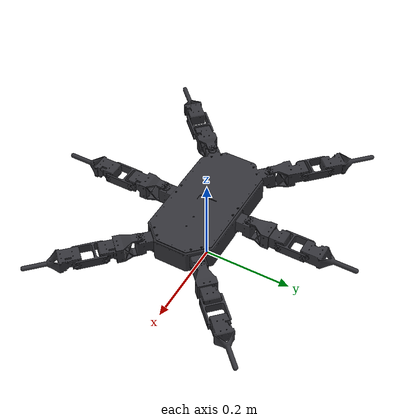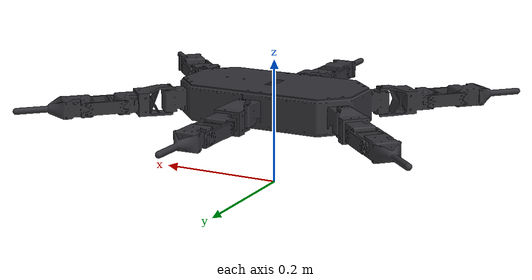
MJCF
<mujoco model="sixtrail1">
  <compiler angle="radian" meshdir="meshes" autolimits="true"/>

  <default>
    <default class="sixtrail1">
      <!-- joint conventions: coxa about +z (yaw), femur/tibia about +y (positive = leg down) -->
      <default class="coxa_joint"><joint axis="0 0 1" range="-1.5708 1.5708"/></default>
      <default class="femur_joint"><joint axis="0 1 0" range="-2.0944 2.0944"/></default>  <!-- widened from ±90°: hardware home stance has femur ~105° down (2026-09-02) -->
      <default class="tibia_joint"><joint axis="0 1 0" range="-2.0944 2.0944"/></default>
      <default class="visual">
        <geom type="mesh" contype="0" conaffinity="0" group="2" material="dark"/>
      </default>
      <default class="collision">
        <geom group="3" type="box" contype="1" conaffinity="1"/>
        <!-- per-link primitives (identical for the six legs, expressed in each link frame) -->
        <default class="coxa_mount"><geom type="box" size="0.0176 0.0143 0.024" pos="-0.0064 0 0.001"/></default>
        <default class="coxa0"><geom type="box" size="0.0275 0.0223 0.0184" pos="0.0595 -0.0012 0"/></default>
        <default class="coxa1"><geom type="box" size="0.0175 0.012 0.023" pos="0.0145 0 0.001"/></default>
        <default class="femur0"><geom type="box" size="0.033 0.023 0.0101" pos="0.03 0 0"/></default>
        <default class="tibia0"><geom type="box" size="0.0255 0.0217 0.0143" pos="0.0145 -0.0017 0"/></default>
        <default class="tibia1"><geom type="capsule" size="0.007" fromto="0.04 0 0 0.088 0 0"/></default>
        <default class="foot"><geom type="sphere" size="0.005" pos="0.10525 0 0"/></default>
      </default>
    </default>
  </default>

  <asset>
    <material name="dark" rgba="0.2 0.2 0.22 1"/>
    <mesh class="sixtrail1" file="body.stl"/>
    <mesh class="sixtrail1" file="coxa.stl"/>
    <mesh class="sixtrail1" file="femur.stl"/>
    <mesh class="sixtrail1" file="tibia.stl"/>
  </asset>

  <worldbody>
    <body name="base" pos="0 0 0.154" childclass="sixtrail1">
      <light pos="0 0 1.5" mode="trackcom"/>
      <camera name="tracking" pos="0.7 -1.0 0.45" xyaxes="0.82 0.57 0 -0.25 0.36 0.9" mode="trackcom"/>
      <camera name="side" pos="0 -0.9 0.25" xyaxes="1 0 0 0 0.3 1" mode="trackcom"/>
      <freejoint name="floating_base_joint"/>
      <inertial pos="-1.752e-06 0 -0.01881" mass="3.496" fullinertia="0.01452 0.03806 0.04988 0 5.954e-07 0"/>
      <site name="imu" pos="0 0 0" quat="0.7071068 0 0 0.7071068" group="5"/>  <!-- WitMotion mounted yawed +90 deg: IMU x = body left (measured 2026-09-02) -->
      <!-- Forward/down D435i optical frame proxy: 13 cm forward, pitched 35 deg down. -->
      <site name="depth_camera" pos="0.13 0 0.02" quat="-0.6272114 -0.3265056 0.3265056 0.6272114" group="5"/>
      <geom class="visual" mesh="body"/>
      <geom name="base_collision0" class="collision" size="0.15 0.0755 0.029" pos="0 0 -0.019"/>
      <geom name="base_collision1" class="coxa_mount" pos="0.1455 0.06547 -0.019" quat="0.92388 0 0 0.382683"/>  <!-- LF coxa servo mount -->
      <geom name="base_collision2" class="coxa_mount" pos="0 0.0936 -0.019" quat="0.707107 0 0 0.707107"/>  <!-- LM coxa servo mount -->
      <geom name="base_collision3" class="coxa_mount" pos="-0.1455 0.06547 -0.019" quat="0.382683 0 0 0.92388"/>  <!-- LH coxa servo mount -->
      <geom name="base_collision4" class="coxa_mount" pos="0.1455 -0.06547 -0.019" quat="0.92388 0 0 -0.382683"/>  <!-- RF coxa servo mount -->
      <geom name="base_collision5" class="coxa_mount" pos="0 -0.0936 -0.019" quat="0.707107 0 0 -0.707107"/>  <!-- RM coxa servo mount -->
      <geom name="base_collision6" class="coxa_mount" pos="-0.1455 -0.06547 -0.019" quat="0.382683 0 0 -0.92388"/>  <!-- RH coxa servo mount -->
      <body name="LF_coxa" pos="0.15 0.07 -0.02" quat="0.92388 0 0 0.382683">
        <inertial pos="0.05422 -0.000401 7.604e-05" mass="0.68" fullinertia="0.0001565 0.0003309 0.000329 2.054e-06 2.024e-06 0"/>
        <joint name="LF_coxa_joint" class="coxa_joint"/>
        <geom class="visual" mesh="coxa"/>
        <geom name="LF_coxa_collision0" class="coxa0"/>
        <geom name="LF_coxa_collision1" class="coxa1"/>
        <body name="LF_femur" pos="0.076 0 0">
          <inertial pos="0.02733 0 0" mass="0.25" fullinertia="9.933e-05 6.842e-05 0.0001502 0 0 0"/>
          <joint name="LF_femur_joint" class="femur_joint"/>
          <geom class="visual" mesh="femur"/>
          <geom name="LF_femur_collision0" class="femur0"/>
          <body name="LF_tibia" pos="0.06 0 0">
            <inertial pos="0.02077 -0.0004534 2.466e-06" mass="0.47" fullinertia="7.15e-05 0.000301 0.0003205 -1.968e-06 0 0"/>
            <joint name="LF_tibia_joint" class="tibia_joint"/>
            <geom class="visual" mesh="tibia"/>
            <geom name="LF_tibia_collision0" class="tibia0"/>
            <geom name="LF_tibia_collision1" class="tibia1"/>
            <geom name="LF_foot_collision" class="foot"/>
            <site name="LF" pos="0.10525 0 0" type="sphere" size="0.005" group="5"/>
          </body>
        </body>
      </body>
      <body name="LM_coxa" pos="0 0.1 -0.02" quat="0.707107 0 0 0.707107">
        <inertial pos="0.05422 -0.000401 7.604e-05" mass="0.68" fullinertia="0.0001565 0.0003309 0.000329 2.054e-06 2.024e-06 0"/>
        <joint name="LM_coxa_joint" class="coxa_joint"/>
        <geom class="visual" mesh="coxa"/>
        <geom name="LM_coxa_collision0" class="coxa0"/>
        <geom name="LM_coxa_collision1" class="coxa1"/>
        <body name="LM_femur" pos="0.076 0 0">
          <inertial pos="0.02733 0 0" mass="0.25" fullinertia="9.933e-05 6.842e-05 0.0001502 0 0 0"/>
          <joint name="LM_femur_joint" class="femur_joint"/>
          <geom class="visual" mesh="femur"/>
          <geom name="LM_femur_collision0" class="femur0"/>
          <body name="LM_tibia" pos="0.06 0 0">
            <inertial pos="0.02077 -0.0004534 2.466e-06" mass="0.47" fullinertia="7.15e-05 0.000301 0.0003205 -1.968e-06 0 0"/>
            <joint name="LM_tibia_joint" class="tibia_joint"/>
            <geom class="visual" mesh="tibia"/>
            <geom name="LM_tibia_collision0" class="tibia0"/>
            <geom name="LM_tibia_collision1" class="tibia1"/>
            <geom name="LM_foot_collision" class="foot"/>
            <site name="LM" pos="0.10525 0 0" type="sphere" size="0.005" group="5"/>
          </body>
        </body>
      </body>
      <body name="LH_coxa" pos="-0.15 0.07 -0.02" quat="0.382683 0 0 0.92388">
        <inertial pos="0.05422 -0.000401 7.604e-05" mass="0.68" fullinertia="0.0001565 0.0003309 0.000329 2.054e-06 2.024e-06 0"/>
        <joint name="LH_coxa_joint" class="coxa_joint"/>
        <geom class="visual" mesh="coxa"/>
        <geom name="LH_coxa_collision0" class="coxa0"/>
        <geom name="LH_coxa_collision1" class="coxa1"/>
        <body name="LH_femur" pos="0.076 0 0">
          <inertial pos="0.02733 0 0" mass="0.25" fullinertia="9.933e-05 6.842e-05 0.0001502 0 0 0"/>
          <joint name="LH_femur_joint" class="femur_joint"/>
          <geom class="visual" mesh="femur"/>
          <geom name="LH_femur_collision0" class="femur0"/>
          <body name="LH_tibia" pos="0.06 0 0">
            <inertial pos="0.02077 -0.0004534 2.466e-06" mass="0.47" fullinertia="7.15e-05 0.000301 0.0003205 -1.968e-06 0 0"/>
            <joint name="LH_tibia_joint" class="tibia_joint"/>
            <geom class="visual" mesh="tibia"/>
            <geom name="LH_tibia_collision0" class="tibia0"/>
            <geom name="LH_tibia_collision1" class="tibia1"/>
            <geom name="LH_foot_collision" class="foot"/>
            <site name="LH" pos="0.10525 0 0" type="sphere" size="0.005" group="5"/>
          </body>
        </body>
      </body>
      <body name="RF_coxa" pos="0.15 -0.07 -0.02" quat="0.92388 0 0 -0.382683">
        <inertial pos="0.05422 -0.000401 7.604e-05" mass="0.68" fullinertia="0.0001565 0.0003309 0.000329 2.054e-06 2.024e-06 0"/>
        <joint name="RF_coxa_joint" class="coxa_joint"/>
        <geom class="visual" mesh="coxa"/>
        <geom name="RF_coxa_collision0" class="coxa0"/>
        <geom name="RF_coxa_collision1" class="coxa1"/>
        <body name="RF_femur" pos="0.076 0 0">
          <inertial pos="0.02733 0 0" mass="0.25" fullinertia="9.933e-05 6.842e-05 0.0001502 0 0 0"/>
          <joint name="RF_femur_joint" class="femur_joint"/>
          <geom class="visual" mesh="femur"/>
          <geom name="RF_femur_collision0" class="femur0"/>
          <body name="RF_tibia" pos="0.06 0 0">
            <inertial pos="0.02077 -0.0004534 2.466e-06" mass="0.47" fullinertia="7.15e-05 0.000301 0.0003205 -1.968e-06 0 0"/>
            <joint name="RF_tibia_joint" class="tibia_joint"/>
            <geom class="visual" mesh="tibia"/>
            <geom name="RF_tibia_collision0" class="tibia0"/>
            <geom name="RF_tibia_collision1" class="tibia1"/>
            <geom name="RF_foot_collision" class="foot"/>
            <site name="RF" pos="0.10525 0 0" type="sphere" size="0.005" group="5"/>
          </body>
        </body>
      </body>
      <body name="RM_coxa" pos="0 -0.1 -0.02" quat="0.707107 0 0 -0.707107">
        <inertial pos="0.05422 -0.000401 7.604e-05" mass="0.68" fullinertia="0.0001565 0.0003309 0.000329 2.054e-06 2.024e-06 0"/>
        <joint name="RM_coxa_joint" class="coxa_joint"/>
        <geom class="visual" mesh="coxa"/>
        <geom name="RM_coxa_collision0" class="coxa0"/>
        <geom name="RM_coxa_collision1" class="coxa1"/>
        <body name="RM_femur" pos="0.076 0 0">
          <inertial pos="0.02733 0 0" mass="0.25" fullinertia="9.933e-05 6.842e-05 0.0001502 0 0 0"/>
          <joint name="RM_femur_joint" class="femur_joint"/>
          <geom class="visual" mesh="femur"/>
          <geom name="RM_femur_collision0" class="femur0"/>
          <body name="RM_tibia" pos="0.06 0 0">
            <inertial pos="0.02077 -0.0004534 2.466e-06" mass="0.47" fullinertia="7.15e-05 0.000301 0.0003205 -1.968e-06 0 0"/>
            <joint name="RM_tibia_joint" class="tibia_joint"/>
            <geom class="visual" mesh="tibia"/>
            <geom name="RM_tibia_collision0" class="tibia0"/>
            <geom name="RM_tibia_collision1" class="tibia1"/>
            <geom name="RM_foot_collision" class="foot"/>
            <site name="RM" pos="0.10525 0 0" type="sphere" size="0.005" group="5"/>
          </body>
        </body>
      </body>
      <body name="RH_coxa" pos="-0.15 -0.07 -0.02" quat="0.382683 0 0 -0.92388">
        <inertial pos="0.05422 -0.000401 7.604e-05" mass="0.68" fullinertia="0.0001565 0.0003309 0.000329 2.054e-06 2.024e-06 0"/>
        <joint name="RH_coxa_joint" class="coxa_joint"/>
        <geom class="visual" mesh="coxa"/>
        <geom name="RH_coxa_collision0" class="coxa0"/>
        <geom name="RH_coxa_collision1" class="coxa1"/>
        <body name="RH_femur" pos="0.076 0 0">
          <inertial pos="0.02733 0 0" mass="0.25" fullinertia="9.933e-05 6.842e-05 0.0001502 0 0 0"/>
          <joint name="RH_femur_joint" class="femur_joint"/>
          <geom class="visual" mesh="femur"/>
          <geom name="RH_femur_collision0" class="femur0"/>
          <body name="RH_tibia" pos="0.06 0 0">
            <inertial pos="0.02077 -0.0004534 2.466e-06" mass="0.47" fullinertia="7.15e-05 0.000301 0.0003205 -1.968e-06 0 0"/>
            <joint name="RH_tibia_joint" class="tibia_joint"/>
            <geom class="visual" mesh="tibia"/>
            <geom name="RH_tibia_collision0" class="tibia0"/>
            <geom name="RH_tibia_collision1" class="tibia1"/>
            <geom name="RH_foot_collision" class="foot"/>
            <site name="RH" pos="0.10525 0 0" type="sphere" size="0.005" group="5"/>
          </body>
        </body>
      </body>
    </body>
  </worldbody>

  <sensor>
    <gyro name="imu_ang_vel" site="imu"/>
    <velocimeter name="imu_lin_vel" site="imu"/>
    <accelerometer name="imu_lin_acc" site="imu"/>
    <framezaxis name="imu_upvector" objtype="body" objname="world" reftype="site" refname="imu"/>
    <subtreeangmom name="root_angmom" body="base"/>
  </sensor>

  <keyframe>
    <key name="home" qpos="0 0 0.154 1 0 0 0 0 0.45 0.9 0 0.45 0.9 0 0.45 0.9 0 0.45 0.9 0 0.45 0.9 0 0.45 0.9"/>
  </keyframe>
</mujoco>
